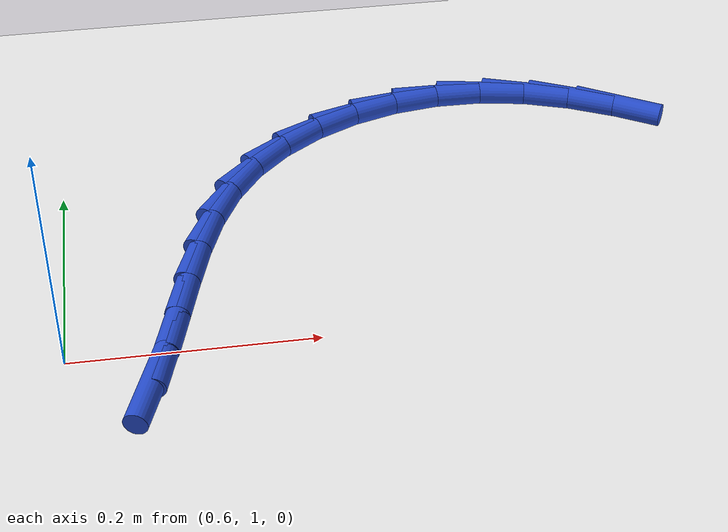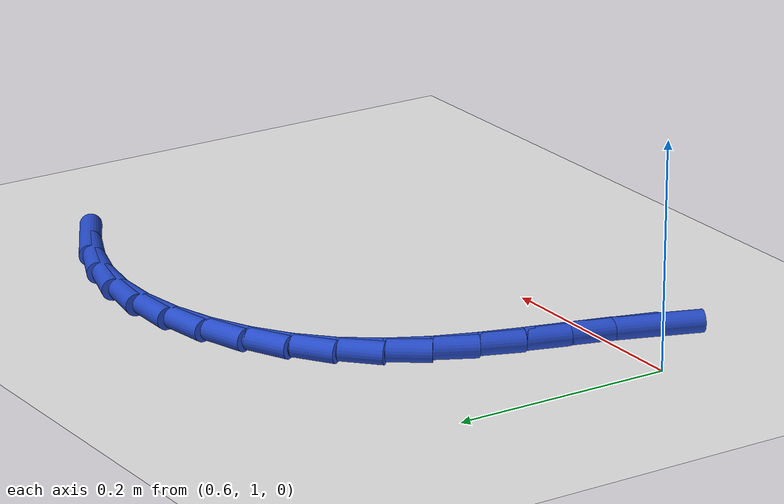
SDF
<sdf version="1.6">
 <world name="default">
  <model name="ground_plane">
   <static>1</static>
   <link name="link">
    <collision name="collision">
     <geometry><plane><normal>0 0 1</normal><size>100 100</size></plane></geometry>
     <surface><friction><ode><mu>100</mu><mu2>50</mu2></ode></friction></surface>
    </collision>
    <visual name="visual">
     <cast_shadows>0</cast_shadows>
     <geometry><plane><normal>0 0 1</normal><size>100 100</size></plane></geometry>
     <material>
      <script><uri>file://media/materials/scripts/gazebo.material</uri><name>Gazebo/WhiteGlow</name></script>
     </material>
    </visual>
   </link>
  </model>
  <model name="line">
   <link name="link_32">
    <pose>0.6652002141731684 0.9562599790509966 0.01 0 1.57 1.2287956257395467</pose>
    <collision name="collision">
     <geometry><cylinder><radius>0.01</radius><length>0.08</length></cylinder></geometry>
    </collision>
    <visual name="visual">
     <material>
      <script><name>Gazebo/Blue</name><uri>file://media/materials/scripts/gazebo.material</uri></script>
     </material>
     <geometry><cylinder><radius>0.01</radius><length>0.08</length></cylinder></geometry>
    </visual>
   </link>
   <link name="link_33">
    <pose>0.6780472304885745 0.9923481655361286 0.01 0 1.57 1.2873501964820488</pose>
    <collision name="collision">
     <geometry><cylinder><radius>0.01</radius><length>0.08</length></cylinder></geometry>
    </collision>
    <visual name="visual">
     <material>
      <script><name>Gazebo/Blue</name><uri>file://media/materials/scripts/gazebo.material</uri></script>
     </material>
     <geometry><cylinder><radius>0.01</radius><length>0.08</length></cylinder></geometry>
    </visual>
   </link>
   <link name="link_34">
    <pose>0.6890952501298401 1.030276185301581 0.01 0 1.57 1.3028959711552246</pose>
    <collision name="collision">
     <geometry><cylinder><radius>0.01</radius><length>0.08</length></cylinder></geometry>
    </collision>
    <visual name="visual">
     <material>
      <script><name>Gazebo/Blue</name><uri>file://media/materials/scripts/gazebo.material</uri></script>
     </material>
     <geometry><cylinder><radius>0.01</radius><length>0.08</length></cylinder></geometry>
    </visual>
   </link>
   <link name="link_35">
    <pose>0.6997161677924342 1.0689681968987708 0.01 0 1.57 1.2781050779983438</pose>
    <collision name="collision">
     <geometry><cylinder><radius>0.01</radius><length>0.08</length></cylinder></geometry>
    </collision>
    <visual name="visual">
     <material>
      <script><name>Gazebo/Blue</name><uri>file://media/materials/scripts/gazebo.material</uri></script>
     </material>
     <geometry><cylinder><radius>0.01</radius><length>0.08</length></cylinder></geometry>
    </visual>
   </link>
   <link name="link_36">
    <pose>0.7112818781718255 1.1073483588791135 0.01 0 1.57 1.2117834386769326</pose>
    <collision name="collision">
     <geometry><cylinder><radius>0.01</radius><length>0.08</length></cylinder></geometry>
    </collision>
    <visual name="visual">
     <material>
      <script><name>Gazebo/Blue</name><uri>file://media/materials/scripts/gazebo.material</uri></script>
     </material>
     <geometry><cylinder><radius>0.01</radius><length>0.08</length></cylinder></geometry>
    </visual>
   </link>
   <link name="link_37">
    <pose>0.725164275963484 1.1443408297940274 0.01 0 1.57 1.1000724248696783</pose>
    <collision name="collision">
     <geometry><cylinder><radius>0.01</radius><length>0.08</length></cylinder></geometry>
    </collision>
    <visual name="visual">
     <material>
      <script><name>Gazebo/Blue</name><uri>file://media/materials/scripts/gazebo.material</uri></script>
     </material>
     <geometry><cylinder><radius>0.01</radius><length>0.08</length></cylinder></geometry>
    </visual>
   </link>
   <link name="link_38">
    <pose>0.742735255862878 1.1788697681949283 0.01 0 1.57 0.940819987587876</pose>
    <collision name="collision">
     <geometry><cylinder><radius>0.01</radius><length>0.08</length></cylinder></geometry>
    </collision>
    <visual name="visual">
     <material>
      <script><name>Gazebo/Blue</name><uri>file://media/materials/scripts/gazebo.material</uri></script>
     </material>
     <geometry><cylinder><radius>0.01</radius><length>0.08</length></cylinder></geometry>
    </visual>
   </link>
   <link name="link_39">
    <pose>0.7653358899972498 1.2098686721806822 0.01 0 1.57 0.7623331683758221</pose>
    <collision name="collision">
     <geometry><cylinder><radius>0.01</radius><length>0.08</length></cylinder></geometry>
    </collision>
    <visual name="visual">
     <material>
      <script><name>Gazebo/Blue</name><uri>file://media/materials/scripts/gazebo.material</uri></script>
     </material>
     <geometry><cylinder><radius>0.01</radius><length>0.08</length></cylinder></geometry>
    </visual>
   </link>
   <link name="link_40">
    <pose>0.7933036446946121 1.2365751424775655 0.01 0 1.57 0.5958100581250614</pose>
    <collision name="collision">
     <geometry><cylinder><radius>0.01</radius><length>0.08</length></cylinder></geometry>
    </collision>
    <visual name="visual">
     <material>
      <script><name>Gazebo/Blue</name><uri>file://media/materials/scripts/gazebo.material</uri></script>
     </material>
     <geometry><cylinder><radius>0.01</radius><length>0.08</length></cylinder></geometry>
    </visual>
   </link>
   <link name="link_41">
    <pose>0.8257748582365394 1.258590733662124 0.01 0 1.57 0.4395600535404526</pose>
    <collision name="collision">
     <geometry><cylinder><radius>0.01</radius><length>0.08</length></cylinder></geometry>
    </collision>
    <visual name="visual">
     <material>
      <script><name>Gazebo/Blue</name><uri>file://media/materials/scripts/gazebo.material</uri></script>
     </material>
     <geometry><cylinder><radius>0.01</radius><length>0.08</length></cylinder></geometry>
    </visual>
   </link>
   <link name="link_42">
    <pose>0.8618151417294005 1.2755384313546707 0.01 0 1.57 0.28909008916874357</pose>
    <collision name="collision">
     <geometry><cylinder><radius>0.01</radius><length>0.08</length></cylinder></geometry>
    </collision>
    <visual name="visual">
     <material>
      <script><name>Gazebo/Blue</name><uri>file://media/materials/scripts/gazebo.material</uri></script>
     </material>
     <geometry><cylinder><radius>0.01</radius><length>0.08</length></cylinder></geometry>
    </visual>
   </link>
   <link name="link_43">
    <pose>0.9004901062795648 1.2870412211755184 0.01 0 1.57 0.1397840937089755</pose>
    <collision name="collision">
     <geometry><cylinder><radius>0.01</radius><length>0.08</length></cylinder></geometry>
    </collision>
    <visual name="visual">
     <material>
      <script><name>Gazebo/Blue</name><uri>file://media/materials/scripts/gazebo.material</uri></script>
     </material>
     <geometry><cylinder><radius>0.01</radius><length>0.08</length></cylinder></geometry>
    </visual>
   </link>
   <link name="link_44">
    <pose>0.9408653629934016 1.2927220887449808 0.01 0 1.57 -0.012591810268285411</pose>
    <collision name="collision">
     <geometry><cylinder><radius>0.01</radius><length>0.08</length></cylinder></geometry>
    </collision>
    <visual name="visual">
     <material>
      <script><name>Gazebo/Blue</name><uri>file://media/materials/scripts/gazebo.material</uri></script>
     </material>
     <geometry><cylinder><radius>0.01</radius><length>0.08</length></cylinder></geometry>
    </visual>
   </link>
   <link name="link_45">
    <pose>0.9820065229772797 1.2922040196833708 0.01 0 1.57 -0.17096162779130247</pose>
    <collision name="collision">
     <geometry><cylinder><radius>0.01</radius><length>0.08</length></cylinder></geometry>
    </collision>
    <visual name="visual">
     <material>
      <script><name>Gazebo/Blue</name><uri>file://media/materials/scripts/gazebo.material</uri></script>
     </material>
     <geometry><cylinder><radius>0.01</radius><length>0.08</length></cylinder></geometry>
    </visual>
   </link>
   <link name="link_46">
    <pose>1.022989888986764 1.2851283665782518 0.01 0 1.57 -0.31942416145211083</pose>
    <collision name="collision">
     <geometry><cylinder><radius>0.01</radius><length>0.08</length></cylinder></geometry>
    </collision>
    <visual name="visual">
     <material>
      <script><name>Gazebo/Blue</name><uri>file://media/materials/scripts/gazebo.material</uri></script>
     </material>
     <geometry><cylinder><radius>0.01</radius><length>0.08</length></cylinder></geometry>
    </visual>
   </link>
   <link name="link_47">
    <pose>1.0632794967661048 1.2718025606524432 0.01 0 1.57 -0.43609325064968757</pose>
    <collision name="collision">
     <geometry><cylinder><radius>0.01</radius><length>0.08</length></cylinder></geometry>
    </collision>
    <visual name="visual">
     <material>
      <script><name>Gazebo/Blue</name><uri>file://media/materials/scripts/gazebo.material</uri></script>
     </material>
     <geometry><cylinder><radius>0.01</radius><length>0.08</length></cylinder></geometry>
    </visual>
   </link>
   <link name="link_48">
    <pose>1.1028274870869748 1.2533725388531043 0.01 0 1.57 -0.5224317070120871</pose>
    <collision name="collision">
     <geometry><cylinder><radius>0.01</radius><length>0.08</length></cylinder></geometry>
    </collision>
    <visual name="visual">
     <material>
      <script><name>Gazebo/Blue</name><uri>file://media/materials/scripts/gazebo.material</uri></script>
     </material>
     <geometry><cylinder><radius>0.01</radius><length>0.08</length></cylinder></geometry>
    </visual>
   </link>
  </model>
 </world>
</sdf>
